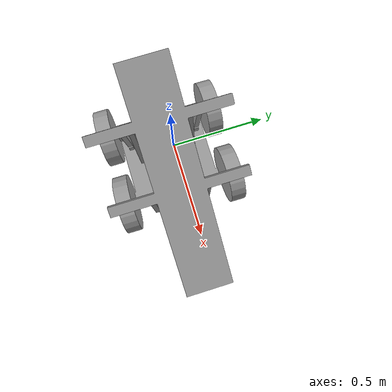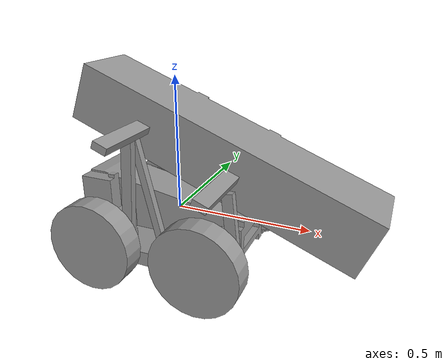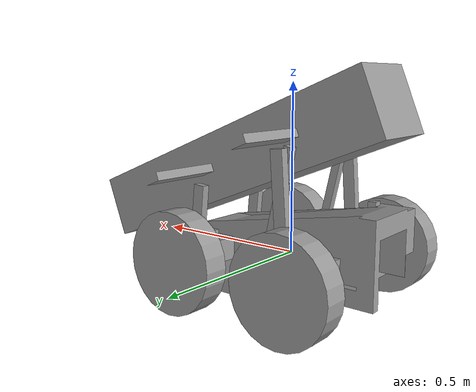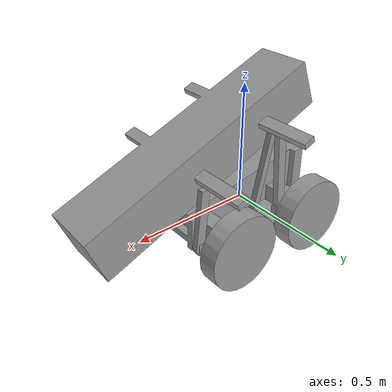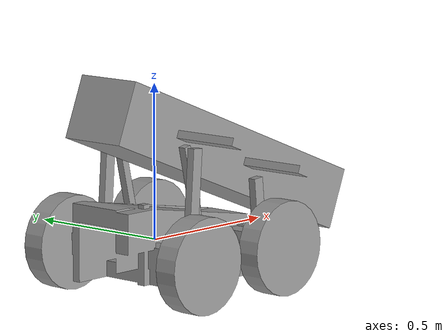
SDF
<?xml version='1.0'?>
<sdf version='1.6'>
  <model name='Digger'>
    <link name='base_link'>
      <pose frame=''>-0.180752 0.18451 -0.096283 0 -0 0</pose>
      <inertial>
        <mass>30</mass>
        <inertia>
          <ixx>0.166667</ixx>
          <ixy>0</ixy>
          <ixz>0</ixz>
          <iyy>0.166667</iyy>
          <iyz>0</iyz>
          <izz>0.166667</izz>
        </inertia>
        <pose frame=''>0 0 0 0 -0 0</pose>
      </inertial>
      <self_collide>0</self_collide>
      <kinematic>0</kinematic>
      <visual name='visual'>
        <pose frame=''>0 0 0 1.5708 0 -1.5708</pose>
        <geometry>
          <mesh>
            <uri>/home/ssr/ros_kinetic/rmc_dev_ws/src/2018_robot/simulations/gazebo_rmc_sim/models/Digger/Simple_Chassis.stl</uri>
            <scale>0.001 0.001 0.001</scale>
          </mesh>
        </geometry>
        <material>
          <lighting>1</lighting>
          <script>
            <uri>file://media/materials/scripts/gazebo.material</uri>
            <name>Gazebo/Grey</name>
          </script>
          <ambient>0.3 0.3 0.3 1</ambient>
          <diffuse>0.7 0.7 0.7 1</diffuse>
          <specular>0.01 0.01 0.01 1</specular>
          <emissive>0 0 0 1</emissive>
          <shader type='vertex'>
            <normal_map>__default__</normal_map>
          </shader>
        </material>
        <cast_shadows>1</cast_shadows>
        <transparency>0</transparency>
      </visual>
      <collision name='collision'>
        <laser_retro>0</laser_retro>
        <max_contacts>10</max_contacts>
        <pose frame=''>0 0 0 1.5708 0 -1.5708</pose>
        <geometry>
          <mesh>
            <uri>/home/ssr/ros_kinetic/rmc_dev_ws/src/2018_robot/simulations/gazebo_rmc_sim/models/Digger/Simple_Chassis.stl</uri>
            <scale>0.001 0.001 0.001</scale>
          </mesh>
        </geometry>
        <surface>
          <friction>
            <ode>
              <mu>1</mu>
              <mu2>1</mu2>
              <fdir1>0 0 0</fdir1>
              <slip1>0</slip1>
              <slip2>0</slip2>
            </ode>
            <torsional>
              <coefficient>1</coefficient>
              <patch_radius>0</patch_radius>
              <surface_radius>0</surface_radius>
              <use_patch_radius>1</use_patch_radius>
              <ode>
                <slip>0</slip>
              </ode>
            </torsional>
          </friction>
          <bounce>
            <restitution_coefficient>0</restitution_coefficient>
            <threshold>1e+06</threshold>
          </bounce>
          <contact>
            <collide_without_contact>0</collide_without_contact>
            <collide_without_contact_bitmask>1</collide_without_contact_bitmask>
            <collide_bitmask>1</collide_bitmask>
            <ode>
              <soft_cfm>0</soft_cfm>
              <soft_erp>0.2</soft_erp>
              <kp>1e+13</kp>
              <kd>1</kd>
              <max_vel>0.01</max_vel>
              <min_depth>0</min_depth>
            </ode>
            <bullet>
              <split_impulse>1</split_impulse>
              <split_impulse_penetration_threshold>-0.01</split_impulse_penetration_threshold>
              <soft_cfm>0</soft_cfm>
              <soft_erp>0.2</soft_erp>
              <kp>1e+13</kp>
              <kd>1</kd>
            </bullet>
          </contact>
        </surface>
      </collision>
    </link>
    <link name='arm'>
      <pose frame=''>-0.325179 0.069854 0.358325 1.19198 -0 -1.5708</pose>
      <inertial>
        <mass>1</mass>
        <inertia>
          <ixx>0.166667</ixx>
          <ixy>0</ixy>
          <ixz>0</ixz>
          <iyy>0.166667</iyy>
          <iyz>0</iyz>
          <izz>0.166667</izz>
        </inertia>
        <pose frame=''>0 0 0 0 -0 0</pose>
      </inertial>
      <self_collide>0</self_collide>
      <kinematic>0</kinematic>
      <visual name='visual'>
        <pose frame=''>0 0 0 0 -0 0</pose>
        <geometry>
          <mesh>
            <uri>/home/ssr/ros_kinetic/rmc_dev_ws/src/2018_robot/simulations/gazebo_rmc_sim/models/Digger/Simple_Arm.stl</uri>
            <scale>0.001 0.001 0.001</scale>
          </mesh>
        </geometry>
        <material>
          <lighting>1</lighting>
          <script>
            <uri>file://media/materials/scripts/gazebo.material</uri>
            <name>Gazebo/Grey</name>
          </script>
          <ambient>0.3 0.3 0.3 1</ambient>
          <diffuse>0.7 0.7 0.7 1</diffuse>
          <specular>0.01 0.01 0.01 1</specular>
          <emissive>0 0 0 1</emissive>
          <shader type='vertex'>
            <normal_map>__default__</normal_map>
          </shader>
        </material>
        <cast_shadows>1</cast_shadows>
        <transparency>0</transparency>
      </visual>
    </link>
    <link name='back_left_actuator_bottom'>
      <pose frame=''>-0.080752 0.146804 -0.01705 0 0.072198 0</pose>
      <inertial>
        <mass>1</mass>
        <inertia>
          <ixx>0.166667</ixx>
          <ixy>0</ixy>
          <ixz>0</ixz>
          <iyy>0.166667</iyy>
          <iyz>0</iyz>
          <izz>0.166667</izz>
        </inertia>
        <pose frame=''>0 0 0 0 -0 0</pose>
      </inertial>
      <self_collide>0</self_collide>
      <kinematic>0</kinematic>
      <visual name='visual'>
        <pose frame=''>0 0 0.17195 0 -0 0</pose>
        <geometry>
          <box>
            <size>0.0381 0.0254 0.3429</size>
          </box>
        </geometry>
        <material>
          <lighting>1</lighting>
          <script>
            <uri>file://media/materials/scripts/gazebo.material</uri>
            <name>Gazebo/Grey</name>
          </script>
          <ambient>0.3 0.3 0.3 1</ambient>
          <diffuse>0.7 0.7 0.7 1</diffuse>
          <specular>0.01 0.01 0.01 1</specular>
          <emissive>0 0 0 1</emissive>
          <shader type='vertex'>
            <normal_map>__default__</normal_map>
          </shader>
        </material>
        <cast_shadows>1</cast_shadows>
        <transparency>0</transparency>
      </visual>
      <collision name='collision'>
        <laser_retro>0</laser_retro>
        <max_contacts>10</max_contacts>
        <pose frame=''>0 0 0.17195 0 -0 0</pose>
        <geometry>
          <box>
            <size>0.0381 0.0254 0.3429</size>
          </box>
        </geometry>
        <surface>
          <friction>
            <ode>
              <mu>1</mu>
              <mu2>1</mu2>
              <fdir1>0 0 0</fdir1>
              <slip1>0</slip1>
              <slip2>0</slip2>
            </ode>
            <torsional>
              <coefficient>1</coefficient>
              <patch_radius>0</patch_radius>
              <surface_radius>0</surface_radius>
              <use_patch_radius>1</use_patch_radius>
              <ode>
                <slip>0</slip>
              </ode>
            </torsional>
          </friction>
          <bounce>
            <restitution_coefficient>0</restitution_coefficient>
            <threshold>1e+06</threshold>
          </bounce>
          <contact>
            <collide_without_contact>0</collide_without_contact>
            <collide_without_contact_bitmask>1</collide_without_contact_bitmask>
            <collide_bitmask>1</collide_bitmask>
            <ode>
              <soft_cfm>0</soft_cfm>
              <soft_erp>0.2</soft_erp>
              <kp>1e+13</kp>
              <kd>1</kd>
              <max_vel>0.01</max_vel>
              <min_depth>0</min_depth>
            </ode>
            <bullet>
              <split_impulse>1</split_impulse>
              <split_impulse_penetration_threshold>-0.01</split_impulse_penetration_threshold>
              <soft_cfm>0</soft_cfm>
              <soft_erp>0.2</soft_erp>
              <kp>1e+13</kp>
              <kd>1</kd>
            </bullet>
          </contact>
        </surface>
      </collision>
    </link>
    <link name='back_left_actuator_top'>
      <pose frame=''>-0.080752 0.146804 -0.01705 0 0.072198 0</pose>
      <inertial>
        <mass>1</mass>
        <inertia>
          <ixx>0.166667</ixx>
          <ixy>0</ixy>
          <ixz>0</ixz>
          <iyy>0.166667</iyy>
          <iyz>0</iyz>
          <izz>0.166667</izz>
        </inertia>
        <pose frame=''>0 0 0 0 -0 0</pose>
      </inertial>
      <self_collide>0</self_collide>
      <kinematic>0</kinematic>
      <visual name='visual'>
        <pose frame=''>0 0 0.17195 0 -0 0</pose>
        <geometry>
          <box>
            <size>0.0381 0.0254 0.3429</size>
          </box>
        </geometry>
        <material>
          <lighting>1</lighting>
          <script>
            <uri>file://media/materials/scripts/gazebo.material</uri>
            <name>Gazebo/Red</name>
          </script>
          <ambient>0.3 0.3 0.3 1</ambient>
          <diffuse>0.7 0.7 0.7 1</diffuse>
          <specular>0.01 0.01 0.01 1</specular>
          <emissive>0 0 0 1</emissive>
          <shader type='vertex'>
            <normal_map>__default__</normal_map>
          </shader>
        </material>
        <cast_shadows>1</cast_shadows>
        <transparency>0</transparency>
      </visual>
      <collision name='collision'>
        <laser_retro>0</laser_retro>
        <max_contacts>10</max_contacts>
        <pose frame=''>0 0 0.17195 0 -0 0</pose>
        <geometry>
          <box>
            <size>0.0381 0.0254 0.3429</size>
          </box>
        </geometry>
        <surface>
          <friction>
            <ode>
              <mu>1</mu>
              <mu2>1</mu2>
              <fdir1>0 0 0</fdir1>
              <slip1>0</slip1>
              <slip2>0</slip2>
            </ode>
            <torsional>
              <coefficient>1</coefficient>
              <patch_radius>0</patch_radius>
              <surface_radius>0</surface_radius>
              <use_patch_radius>1</use_patch_radius>
              <ode>
                <slip>0</slip>
              </ode>
            </torsional>
          </friction>
          <bounce>
            <restitution_coefficient>0</restitution_coefficient>
            <threshold>1e+06</threshold>
          </bounce>
          <contact>
            <collide_without_contact>0</collide_without_contact>
            <collide_without_contact_bitmask>1</collide_without_contact_bitmask>
            <collide_bitmask>1</collide_bitmask>
            <ode>
              <soft_cfm>0</soft_cfm>
              <soft_erp>0.2</soft_erp>
              <kp>1e+13</kp>
              <kd>1</kd>
              <max_vel>0.01</max_vel>
              <min_depth>0</min_depth>
            </ode>
            <bullet>
              <split_impulse>1</split_impulse>
              <split_impulse_penetration_threshold>-0.01</split_impulse_penetration_threshold>
              <soft_cfm>0</soft_cfm>
              <soft_erp>0.2</soft_erp>
              <kp>1e+13</kp>
              <kd>1</kd>
            </bullet>
          </contact>
        </surface>
      </collision>
    </link>
    <link name='back_right_actuator_bottom'>
      <pose frame=''>-0.080752 -0.225027 -0.01705 0 0.072198 0</pose>
      <inertial>
        <mass>1</mass>
        <inertia>
          <ixx>0.166667</ixx>
          <ixy>0</ixy>
          <ixz>0</ixz>
          <iyy>0.166667</iyy>
          <iyz>0</iyz>
          <izz>0.166667</izz>
        </inertia>
        <pose frame=''>0 0 0 0 -0 0</pose>
      </inertial>
      <self_collide>0</self_collide>
      <kinematic>0</kinematic>
      <visual name='visual'>
        <pose frame=''>0 0 0.17195 0 -0 0</pose>
        <geometry>
          <box>
            <size>0.0381 0.0254 0.3429</size>
          </box>
        </geometry>
        <material>
          <lighting>1</lighting>
          <script>
            <uri>file://media/materials/scripts/gazebo.material</uri>
            <name>Gazebo/Grey</name>
          </script>
          <ambient>0.3 0.3 0.3 1</ambient>
          <diffuse>0.7 0.7 0.7 1</diffuse>
          <specular>0.01 0.01 0.01 1</specular>
          <emissive>0 0 0 1</emissive>
          <shader type='vertex'>
            <normal_map>__default__</normal_map>
          </shader>
        </material>
        <cast_shadows>1</cast_shadows>
        <transparency>0</transparency>
      </visual>
      <collision name='collision'>
        <laser_retro>0</laser_retro>
        <max_contacts>10</max_contacts>
        <pose frame=''>0 0 0.17195 0 -0 0</pose>
        <geometry>
          <box>
            <size>0.0381 0.0254 0.3429</size>
          </box>
        </geometry>
        <surface>
          <friction>
            <ode>
              <mu>1</mu>
              <mu2>1</mu2>
              <fdir1>0 0 0</fdir1>
              <slip1>0</slip1>
              <slip2>0</slip2>
            </ode>
            <torsional>
              <coefficient>1</coefficient>
              <patch_radius>0</patch_radius>
              <surface_radius>0</surface_radius>
              <use_patch_radius>1</use_patch_radius>
              <ode>
                <slip>0</slip>
              </ode>
            </torsional>
          </friction>
          <bounce>
            <restitution_coefficient>0</restitution_coefficient>
            <threshold>1e+06</threshold>
          </bounce>
          <contact>
            <collide_without_contact>0</collide_without_contact>
            <collide_without_contact_bitmask>1</collide_without_contact_bitmask>
            <collide_bitmask>1</collide_bitmask>
            <ode>
              <soft_cfm>0</soft_cfm>
              <soft_erp>0.2</soft_erp>
              <kp>1e+13</kp>
              <kd>1</kd>
              <max_vel>0.01</max_vel>
              <min_depth>0</min_depth>
            </ode>
            <bullet>
              <split_impulse>1</split_impulse>
              <split_impulse_penetration_threshold>-0.01</split_impulse_penetration_threshold>
              <soft_cfm>0</soft_cfm>
              <soft_erp>0.2</soft_erp>
              <kp>1e+13</kp>
              <kd>1</kd>
            </bullet>
          </contact>
        </surface>
      </collision>
    </link>
    <link name='back_right_actuator_top'>
      <pose frame=''>-0.080752 -0.225027 -0.01705 0 0.072198 0</pose>
      <inertial>
        <mass>1</mass>
        <inertia>
          <ixx>0.166667</ixx>
          <ixy>0</ixy>
          <ixz>0</ixz>
          <iyy>0.166667</iyy>
          <iyz>0</iyz>
          <izz>0.166667</izz>
        </inertia>
        <pose frame=''>0 0 0 0 -0 0</pose>
      </inertial>
      <self_collide>0</self_collide>
      <kinematic>0</kinematic>
      <visual name='visual'>
        <pose frame=''>0 0 0.17195 0 -0 0</pose>
        <geometry>
          <box>
            <size>0.0381 0.0254 0.3429</size>
          </box>
        </geometry>
        <material>
          <lighting>1</lighting>
          <script>
            <uri>file://media/materials/scripts/gazebo.material</uri>
            <name>Gazebo/Red</name>
          </script>
          <ambient>0.3 0.3 0.3 1</ambient>
          <diffuse>0.7 0.7 0.7 1</diffuse>
          <specular>0.01 0.01 0.01 1</specular>
          <emissive>0 0 0 1</emissive>
          <shader type='vertex'>
            <normal_map>__default__</normal_map>
          </shader>
        </material>
        <cast_shadows>1</cast_shadows>
        <transparency>0</transparency>
      </visual>
      <collision name='collision'>
        <laser_retro>0</laser_retro>
        <max_contacts>10</max_contacts>
        <pose frame=''>0 0 0.17195 0 -0 0</pose>
        <geometry>
          <box>
            <size>0.0381 0.0254 0.3429</size>
          </box>
        </geometry>
        <surface>
          <friction>
            <ode>
              <mu>1</mu>
              <mu2>1</mu2>
              <fdir1>0 0 0</fdir1>
              <slip1>0</slip1>
              <slip2>0</slip2>
            </ode>
            <torsional>
              <coefficient>1</coefficient>
              <patch_radius>0</patch_radius>
              <surface_radius>0</surface_radius>
              <use_patch_radius>1</use_patch_radius>
              <ode>
                <slip>0</slip>
              </ode>
            </torsional>
          </friction>
          <bounce>
            <restitution_coefficient>0</restitution_coefficient>
            <threshold>1e+06</threshold>
          </bounce>
          <contact>
            <collide_without_contact>0</collide_without_contact>
            <collide_without_contact_bitmask>1</collide_without_contact_bitmask>
            <collide_bitmask>1</collide_bitmask>
            <ode>
              <soft_cfm>0</soft_cfm>
              <soft_erp>0.2</soft_erp>
              <kp>1e+13</kp>
              <kd>1</kd>
              <max_vel>0.01</max_vel>
              <min_depth>0</min_depth>
            </ode>
            <bullet>
              <split_impulse>1</split_impulse>
              <split_impulse_penetration_threshold>-0.01</split_impulse_penetration_threshold>
              <soft_cfm>0</soft_cfm>
              <soft_erp>0.2</soft_erp>
              <kp>1e+13</kp>
              <kd>1</kd>
            </bullet>
          </contact>
        </surface>
      </collision>
    </link>
    <link name='front_left_actuator_bottom'>
      <pose frame=''>0.299248 0.09451 -0.079616 0 -0.097496 0</pose>
      <inertial>
        <mass>1</mass>
        <inertia>
          <ixx>0.166667</ixx>
          <ixy>0</ixy>
          <ixz>0</ixz>
          <iyy>0.166667</iyy>
          <iyz>0</iyz>
          <izz>0.166667</izz>
        </inertia>
        <pose frame=''>0 0 0 0 -0 0</pose>
      </inertial>
      <self_collide>0</self_collide>
      <kinematic>0</kinematic>
      <visual name='visual'>
        <pose frame=''>0 0 0.133333 0 -0 0</pose>
        <geometry>
          <box>
            <size>0.0381 0.0254 0.266667</size>
          </box>
        </geometry>
        <material>
          <lighting>1</lighting>
          <script>
            <uri>file://media/materials/scripts/gazebo.material</uri>
            <name>Gazebo/Grey</name>
          </script>
          <ambient>0.3 0.3 0.3 1</ambient>
          <diffuse>0.7 0.7 0.7 1</diffuse>
          <specular>0.01 0.01 0.01 1</specular>
          <emissive>0 0 0 1</emissive>
          <shader type='vertex'>
            <normal_map>__default__</normal_map>
          </shader>
        </material>
        <cast_shadows>1</cast_shadows>
        <transparency>0</transparency>
      </visual>
      <collision name='collision'>
        <laser_retro>0</laser_retro>
        <max_contacts>10</max_contacts>
        <pose frame=''>0 0 0.133333 0 -0 0</pose>
        <geometry>
          <box>
            <size>0.0381 0.0254 0.266667</size>
          </box>
        </geometry>
        <surface>
          <friction>
            <ode>
              <mu>1</mu>
              <mu2>1</mu2>
              <fdir1>0 0 0</fdir1>
              <slip1>0</slip1>
              <slip2>0</slip2>
            </ode>
            <torsional>
              <coefficient>1</coefficient>
              <patch_radius>0</patch_radius>
              <surface_radius>0</surface_radius>
              <use_patch_radius>1</use_patch_radius>
              <ode>
                <slip>0</slip>
              </ode>
            </torsional>
          </friction>
          <bounce>
            <restitution_coefficient>0</restitution_coefficient>
            <threshold>1e+06</threshold>
          </bounce>
          <contact>
            <collide_without_contact>0</collide_without_contact>
            <collide_without_contact_bitmask>1</collide_without_contact_bitmask>
            <collide_bitmask>1</collide_bitmask>
            <ode>
              <soft_cfm>0</soft_cfm>
              <soft_erp>0.2</soft_erp>
              <kp>1e+13</kp>
              <kd>1</kd>
              <max_vel>0.01</max_vel>
              <min_depth>0</min_depth>
            </ode>
            <bullet>
              <split_impulse>1</split_impulse>
              <split_impulse_penetration_threshold>-0.01</split_impulse_penetration_threshold>
              <soft_cfm>0</soft_cfm>
              <soft_erp>0.2</soft_erp>
              <kp>1e+13</kp>
              <kd>1</kd>
            </bullet>
          </contact>
        </surface>
      </collision>
    </link>
    <link name='front_left_actuator_top'>
      <pose frame=''>0.299248 0.09451 -0.079616 0 -0.097496 0</pose>
      <inertial>
        <mass>1</mass>
        <inertia>
          <ixx>0.166667</ixx>
          <ixy>0</ixy>
          <ixz>0</ixz>
          <iyy>0.166667</iyy>
          <iyz>0</iyz>
          <izz>0.166667</izz>
        </inertia>
        <pose frame=''>0 0 0 0 -0 0</pose>
      </inertial>
      <self_collide>0</self_collide>
      <kinematic>0</kinematic>
      <visual name='visual'>
        <pose frame=''>0 0 0.133333 0 -0 0</pose>
        <geometry>
          <box>
            <size>0.0381 0.0254 0.266667</size>
          </box>
        </geometry>
        <material>
          <lighting>1</lighting>
          <script>
            <uri>file://media/materials/scripts/gazebo.material</uri>
            <name>Gazebo/Red</name>
          </script>
          <ambient>0.3 0.3 0.3 1</ambient>
          <diffuse>0.7 0.7 0.7 1</diffuse>
          <specular>0.01 0.01 0.01 1</specular>
          <emissive>0 0 0 1</emissive>
          <shader type='vertex'>
            <normal_map>__default__</normal_map>
          </shader>
        </material>
        <cast_shadows>1</cast_shadows>
        <transparency>0</transparency>
      </visual>
      <collision name='collision'>
        <laser_retro>0</laser_retro>
        <max_contacts>10</max_contacts>
        <pose frame=''>0 0 0.133333 0 -0 0</pose>
        <geometry>
          <box>
            <size>0.0381 0.0254 0.266667</size>
          </box>
        </geometry>
        <surface>
          <friction>
            <ode>
              <mu>1</mu>
              <mu2>1</mu2>
              <fdir1>0 0 0</fdir1>
              <slip1>0</slip1>
              <slip2>0</slip2>
            </ode>
            <torsional>
              <coefficient>1</coefficient>
              <patch_radius>0</patch_radius>
              <surface_radius>0</surface_radius>
              <use_patch_radius>1</use_patch_radius>
              <ode>
                <slip>0</slip>
              </ode>
            </torsional>
          </friction>
          <bounce>
            <restitution_coefficient>0</restitution_coefficient>
            <threshold>1e+06</threshold>
          </bounce>
          <contact>
            <collide_without_contact>0</collide_without_contact>
            <collide_without_contact_bitmask>1</collide_without_contact_bitmask>
            <collide_bitmask>1</collide_bitmask>
            <ode>
              <soft_cfm>0</soft_cfm>
              <soft_erp>0.2</soft_erp>
              <kp>1e+13</kp>
              <kd>1</kd>
              <max_vel>0.01</max_vel>
              <min_depth>0</min_depth>
            </ode>
            <bullet>
              <split_impulse>1</split_impulse>
              <split_impulse_penetration_threshold>-0.01</split_impulse_penetration_threshold>
              <soft_cfm>0</soft_cfm>
              <soft_erp>0.2</soft_erp>
              <kp>1e+13</kp>
              <kd>1</kd>
            </bullet>
          </contact>
        </surface>
      </collision>
    </link>
    <link name='front_right_actuator_bottom'>
      <pose frame=''>0.299248 -0.18549 -0.079616 0 -0.097496 0</pose>
      <inertial>
        <mass>1</mass>
        <inertia>
          <ixx>0.166667</ixx>
          <ixy>0</ixy>
          <ixz>0</ixz>
          <iyy>0.166667</iyy>
          <iyz>0</iyz>
          <izz>0.166667</izz>
        </inertia>
        <pose frame=''>0 0 0 0 -0 0</pose>
      </inertial>
      <self_collide>0</self_collide>
      <kinematic>0</kinematic>
      <visual name='visual'>
        <pose frame=''>0 0 0.133333 0 -0 0</pose>
        <geometry>
          <box>
            <size>0.0381 0.0254 0.266667</size>
          </box>
        </geometry>
        <material>
          <lighting>1</lighting>
          <script>
            <uri>file://media/materials/scripts/gazebo.material</uri>
            <name>Gazebo/Grey</name>
          </script>
          <ambient>0.3 0.3 0.3 1</ambient>
          <diffuse>0.7 0.7 0.7 1</diffuse>
          <specular>0.01 0.01 0.01 1</specular>
          <emissive>0 0 0 1</emissive>
          <shader type='vertex'>
            <normal_map>__default__</normal_map>
          </shader>
        </material>
        <cast_shadows>1</cast_shadows>
        <transparency>0</transparency>
      </visual>
      <collision name='collision'>
        <laser_retro>0</laser_retro>
        <max_contacts>10</max_contacts>
        <pose frame=''>0 0 0.133333 0 -0 0</pose>
        <geometry>
          <box>
            <size>0.0381 0.0254 0.266667</size>
          </box>
        </geometry>
        <surface>
          <friction>
            <ode>
              <mu>1</mu>
              <mu2>1</mu2>
              <fdir1>0 0 0</fdir1>
              <slip1>0</slip1>
              <slip2>0</slip2>
            </ode>
            <torsional>
              <coefficient>1</coefficient>
              <patch_radius>0</patch_radius>
              <surface_radius>0</surface_radius>
              <use_patch_radius>1</use_patch_radius>
              <ode>
                <slip>0</slip>
              </ode>
            </torsional>
          </friction>
          <bounce>
            <restitution_coefficient>0</restitution_coefficient>
            <threshold>1e+06</threshold>
          </bounce>
          <contact>
            <collide_without_contact>0</collide_without_contact>
            <collide_without_contact_bitmask>1</collide_without_contact_bitmask>
            <collide_bitmask>1</collide_bitmask>
            <ode>
              <soft_cfm>0</soft_cfm>
              <soft_erp>0.2</soft_erp>
              <kp>1e+13</kp>
              <kd>1</kd>
              <max_vel>0.01</max_vel>
              <min_depth>0</min_depth>
            </ode>
            <bullet>
              <split_impulse>1</split_impulse>
              <split_impulse_penetration_threshold>-0.01</split_impulse_penetration_threshold>
              <soft_cfm>0</soft_cfm>
              <soft_erp>0.2</soft_erp>
              <kp>1e+13</kp>
              <kd>1</kd>
            </bullet>
          </contact>
        </surface>
      </collision>
    </link>
    <link name='front_right_actuator_top'>
      <pose frame=''>0.299248 -0.18549 -0.079616 0 -0.097496 0</pose>
      <inertial>
        <mass>1</mass>
        <inertia>
          <ixx>0.166667</ixx>
          <ixy>0</ixy>
          <ixz>0</ixz>
          <iyy>0.166667</iyy>
          <iyz>0</iyz>
          <izz>0.166667</izz>
        </inertia>
        <pose frame=''>0 0 0 0 -0 0</pose>
      </inertial>
      <self_collide>0</self_collide>
      <kinematic>0</kinematic>
      <visual name='visual'>
        <pose frame=''>0 0 0.133333 0 -0 0</pose>
        <geometry>
          <box>
            <size>0.0381 0.0254 0.266667</size>
          </box>
        </geometry>
        <material>
          <lighting>1</lighting>
          <script>
            <uri>file://media/materials/scripts/gazebo.material</uri>
            <name>Gazebo/Red</name>
          </script>
          <ambient>0.3 0.3 0.3 1</ambient>
          <diffuse>0.7 0.7 0.7 1</diffuse>
          <specular>0.01 0.01 0.01 1</specular>
          <emissive>0 0 0 1</emissive>
          <shader type='vertex'>
            <normal_map>__default__</normal_map>
          </shader>
        </material>
        <cast_shadows>1</cast_shadows>
        <transparency>0</transparency>
      </visual>
      <collision name='collision'>
        <laser_retro>0</laser_retro>
        <max_contacts>10</max_contacts>
        <pose frame=''>0 0 0.133333 0 -0 0</pose>
        <geometry>
          <box>
            <size>0.0381 0.0254 0.266667</size>
          </box>
        </geometry>
        <surface>
          <friction>
            <ode>
              <mu>1</mu>
              <mu2>1</mu2>
              <fdir1>0 0 0</fdir1>
              <slip1>0</slip1>
              <slip2>0</slip2>
            </ode>
            <torsional>
              <coefficient>1</coefficient>
              <patch_radius>0</patch_radius>
              <surface_radius>0</surface_radius>
              <use_patch_radius>1</use_patch_radius>
              <ode>
                <slip>0</slip>
              </ode>
            </torsional>
          </friction>
          <bounce>
            <restitution_coefficient>0</restitution_coefficient>
            <threshold>1e+06</threshold>
          </bounce>
          <contact>
            <collide_without_contact>0</collide_without_contact>
            <collide_without_contact_bitmask>1</collide_without_contact_bitmask>
            <collide_bitmask>1</collide_bitmask>
            <ode>
              <soft_cfm>0</soft_cfm>
              <soft_erp>0.2</soft_erp>
              <kp>1e+13</kp>
              <kd>1</kd>
              <max_vel>0.01</max_vel>
              <min_depth>0</min_depth>
            </ode>
            <bullet>
              <split_impulse>1</split_impulse>
              <split_impulse_penetration_threshold>-0.01</split_impulse_penetration_threshold>
              <soft_cfm>0</soft_cfm>
              <soft_erp>0.2</soft_erp>
              <kp>1e+13</kp>
              <kd>1</kd>
            </bullet>
          </contact>
        </surface>
      </collision>
    </link>
    <link name='left_support'>
      <pose frame=''>0.024618 0.099558 -0.043898 0 -0.224957 0</pose>
      <inertial>
        <mass>1</mass>
        <inertia>
          <ixx>0.166667</ixx>
          <ixy>0</ixy>
          <ixz>0</ixz>
          <iyy>0.166667</iyy>
          <iyz>0</iyz>
          <izz>0.166667</izz>
        </inertia>
        <pose frame=''>0 0 0 0 -0 0</pose>
      </inertial>
      <self_collide>0</self_collide>
      <kinematic>0</kinematic>
      <visual name='visual'>
        <pose frame=''>0 0 0.1905 0 -0 0</pose>
        <geometry>
          <box>
            <size>0.0254 0.0254 0.381</size>
          </box>
        </geometry>
        <material>
          <lighting>1</lighting>
          <script>
            <uri>file://media/materials/scripts/gazebo.material</uri>
            <name>Gazebo/Grey</name>
          </script>
          <ambient>0.3 0.3 0.3 1</ambient>
          <diffuse>0.7 0.7 0.7 1</diffuse>
          <specular>0.01 0.01 0.01 1</specular>
          <emissive>0 0 0 1</emissive>
          <shader type='vertex'>
            <normal_map>__default__</normal_map>
          </shader>
        </material>
        <cast_shadows>1</cast_shadows>
        <transparency>0</transparency>
      </visual>
      <collision name='collision'>
        <laser_retro>0</laser_retro>
        <max_contacts>10</max_contacts>
        <pose frame=''>0 0 0.1905 0 -0 0</pose>
        <geometry>
          <box>
            <size>0.0254 0.0254 0.381</size>
          </box>
        </geometry>
        <surface>
          <friction>
            <ode>
              <mu>1</mu>
              <mu2>1</mu2>
              <fdir1>0 0 0</fdir1>
              <slip1>0</slip1>
              <slip2>0</slip2>
            </ode>
            <torsional>
              <coefficient>1</coefficient>
              <patch_radius>0</patch_radius>
              <surface_radius>0</surface_radius>
              <use_patch_radius>1</use_patch_radius>
              <ode>
                <slip>0</slip>
              </ode>
            </torsional>
          </friction>
          <bounce>
            <restitution_coefficient>0</restitution_coefficient>
            <threshold>1e+06</threshold>
          </bounce>
          <contact>
            <collide_without_contact>0</collide_without_contact>
            <collide_without_contact_bitmask>1</collide_without_contact_bitmask>
            <collide_bitmask>1</collide_bitmask>
            <ode>
              <soft_cfm>0</soft_cfm>
              <soft_erp>0.2</soft_erp>
              <kp>1e+13</kp>
              <kd>1</kd>
              <max_vel>0.01</max_vel>
              <min_depth>0</min_depth>
            </ode>
            <bullet>
              <split_impulse>1</split_impulse>
              <split_impulse_penetration_threshold>-0.01</split_impulse_penetration_threshold>
              <soft_cfm>0</soft_cfm>
              <soft_erp>0.2</soft_erp>
              <kp>1e+13</kp>
              <kd>1</kd>
            </bullet>
          </contact>
        </surface>
      </collision>
    </link>
    <link name='back_right_wheel'>
      <pose frame=''>-0.147977 -0.325036 -0.014715 1.5708 -0 0</pose>
      <inertial>
        <mass>1</mass>
        <inertia>
          <ixx>0.145833</ixx>
          <ixy>0</ixy>
          <ixz>0</ixz>
          <iyy>0.145833</iyy>
          <iyz>0</iyz>
          <izz>0.125</izz>
        </inertia>
        <pose frame=''>0 0 0 0 -0 0</pose>
      </inertial>
      <gravity>1</gravity>
      <self_collide>0</self_collide>
      <kinematic>0</kinematic>
      <visual name='visual'>
        <pose frame=''>0 0 0 0 -0 0</pose>
        <geometry>
          <cylinder>
            <radius>0.1524</radius>
            <length>0.0762</length>
          </cylinder>
        </geometry>
        <material>
          <lighting>1</lighting>
          <script>
            <uri>file://media/materials/scripts/gazebo.material</uri>
            <name>Gazebo/Grey</name>
          </script>
          <ambient>0.3 0.3 0.3 1</ambient>
          <diffuse>0.7 0.7 0.7 1</diffuse>
          <specular>0.01 0.01 0.01 1</specular>
          <emissive>0 0 0 1</emissive>
          <shader type='vertex'>
            <normal_map>__default__</normal_map>
          </shader>
        </material>
        <cast_shadows>1</cast_shadows>
        <transparency>0</transparency>
      </visual>
      <collision name='collision'>
        <laser_retro>0</laser_retro>
        <max_contacts>10</max_contacts>
        <pose frame=''>0 0 0 0 -0 0</pose>
        <geometry>
          <cylinder>
            <radius>0.1524</radius>
            <length>0.0762</length>
          </cylinder>
        </geometry>
        <surface>
          <friction>
            <ode>
              <mu>1</mu>
              <mu2>1</mu2>
              <fdir1>0 0 0</fdir1>
              <slip1>0</slip1>
              <slip2>0</slip2>
            </ode>
            <torsional>
              <coefficient>1</coefficient>
              <patch_radius>0</patch_radius>
              <surface_radius>0</surface_radius>
              <use_patch_radius>1</use_patch_radius>
              <ode>
                <slip>0</slip>
              </ode>
            </torsional>
          </friction>
          <bounce>
            <restitution_coefficient>0</restitution_coefficient>
            <threshold>1e+06</threshold>
          </bounce>
          <contact>
            <collide_without_contact>0</collide_without_contact>
            <collide_without_contact_bitmask>1</collide_without_contact_bitmask>
            <collide_bitmask>1</collide_bitmask>
            <ode>
              <soft_cfm>0</soft_cfm>
              <soft_erp>0.2</soft_erp>
              <kp>1e+13</kp>
              <kd>1</kd>
              <max_vel>0.01</max_vel>
              <min_depth>0</min_depth>
            </ode>
            <bullet>
              <split_impulse>1</split_impulse>
              <split_impulse_penetration_threshold>-0.01</split_impulse_penetration_threshold>
              <soft_cfm>0</soft_cfm>
              <soft_erp>0.2</soft_erp>
              <kp>1e+13</kp>
              <kd>1</kd>
            </bullet>
          </contact>
        </surface>
      </collision>
    </link>
    <link name='front_right_wheel'>
      <pose frame=''>0.230905 -0.325036 -0.014715 1.5708 7e-06 -0.007032</pose>
      <inertial>
        <mass>1</mass>
        <inertia>
          <ixx>0.145833</ixx>
          <ixy>0</ixy>
          <ixz>0</ixz>
          <iyy>0.145833</iyy>
          <iyz>0</iyz>
          <izz>0.125</izz>
        </inertia>
        <pose frame=''>0 0 0 0 -0 0</pose>
      </inertial>
      <self_collide>0</self_collide>
      <kinematic>0</kinematic>
      <gravity>1</gravity>
      <visual name='visual'>
        <pose frame=''>0 0 0 0 -0 0</pose>
        <geometry>
          <cylinder>
            <radius>0.1524</radius>
            <length>0.0762</length>
          </cylinder>
        </geometry>
        <material>
          <lighting>1</lighting>
          <script>
            <uri>file://media/materials/scripts/gazebo.material</uri>
            <name>Gazebo/Grey</name>
          </script>
          <ambient>0.3 0.3 0.3 1</ambient>
          <diffuse>0.7 0.7 0.7 1</diffuse>
          <specular>0.01 0.01 0.01 1</specular>
          <emissive>0 0 0 1</emissive>
          <shader type='vertex'>
            <normal_map>__default__</normal_map>
          </shader>
        </material>
        <cast_shadows>1</cast_shadows>
        <transparency>0</transparency>
      </visual>
      <collision name='collision'>
        <laser_retro>0</laser_retro>
        <max_contacts>10</max_contacts>
        <pose frame=''>0 0 0 0 -0 0</pose>
        <geometry>
          <cylinder>
            <radius>0.1524</radius>
            <length>0.0762</length>
          </cylinder>
        </geometry>
        <surface>
          <friction>
            <ode>
              <mu>1</mu>
              <mu2>1</mu2>
              <fdir1>0 0 0</fdir1>
              <slip1>0</slip1>
              <slip2>0</slip2>
            </ode>
            <torsional>
              <coefficient>1</coefficient>
              <patch_radius>0</patch_radius>
              <surface_radius>0</surface_radius>
              <use_patch_radius>1</use_patch_radius>
              <ode>
                <slip>0</slip>
              </ode>
            </torsional>
          </friction>
          <bounce>
            <restitution_coefficient>0</restitution_coefficient>
            <threshold>1e+06</threshold>
          </bounce>
          <contact>
            <collide_without_contact>0</collide_without_contact>
            <collide_without_contact_bitmask>1</collide_without_contact_bitmask>
            <collide_bitmask>1</collide_bitmask>
            <ode>
              <soft_cfm>0</soft_cfm>
              <soft_erp>0.2</soft_erp>
              <kp>1e+13</kp>
              <kd>1</kd>
              <max_vel>0.01</max_vel>
              <min_depth>0</min_depth>
            </ode>
            <bullet>
              <split_impulse>1</split_impulse>
              <split_impulse_penetration_threshold>-0.01</split_impulse_penetration_threshold>
              <soft_cfm>0</soft_cfm>
              <soft_erp>0.2</soft_erp>
              <kp>1e+13</kp>
              <kd>1</kd>
            </bullet>
          </contact>
        </surface>
      </collision>
    </link>
    <link name='back_left_wheel'>
      <pose frame=''>-0.147977 0.243888 -0.014715 1.5708 7e-06 -0.007032</pose>
      <inertial>
        <mass>1</mass>
        <inertia>
          <ixx>0.145833</ixx>
          <ixy>0</ixy>
          <ixz>0</ixz>
          <iyy>0.145833</iyy>
          <iyz>0</iyz>
          <izz>0.125</izz>
        </inertia>
        <pose frame=''>0 0 0 0 -0 0</pose>
      </inertial>
      <self_collide>0</self_collide>
      <kinematic>0</kinematic>
      <gravity>1</gravity>
      <visual name='visual'>
        <pose frame=''>0 0 0 0 -0 0</pose>
        <geometry>
          <cylinder>
            <radius>0.1524</radius>
            <length>0.0762</length>
          </cylinder>
        </geometry>
        <material>
          <lighting>1</lighting>
          <script>
            <uri>file://media/materials/scripts/gazebo.material</uri>
            <name>Gazebo/Grey</name>
          </script>
          <ambient>0.3 0.3 0.3 1</ambient>
          <diffuse>0.7 0.7 0.7 1</diffuse>
          <specular>0.01 0.01 0.01 1</specular>
          <emissive>0 0 0 1</emissive>
          <shader type='vertex'>
            <normal_map>__default__</normal_map>
          </shader>
        </material>
        <cast_shadows>1</cast_shadows>
        <transparency>0</transparency>
      </visual>
      <collision name='collision'>
        <laser_retro>0</laser_retro>
        <max_contacts>10</max_contacts>
        <pose frame=''>0 0 0 0 -0 0</pose>
        <geometry>
          <cylinder>
            <radius>0.1524</radius>
            <length>0.0762</length>
          </cylinder>
        </geometry>
        <surface>
          <friction>
            <ode>
              <mu>1</mu>
              <mu2>1</mu2>
              <fdir1>0 0 0</fdir1>
              <slip1>0</slip1>
              <slip2>0</slip2>
            </ode>
            <torsional>
              <coefficient>1</coefficient>
              <patch_radius>0</patch_radius>
              <surface_radius>0</surface_radius>
              <use_patch_radius>1</use_patch_radius>
              <ode>
                <slip>0</slip>
              </ode>
            </torsional>
          </friction>
          <bounce>
            <restitution_coefficient>0</restitution_coefficient>
            <threshold>1e+06</threshold>
          </bounce>
          <contact>
            <collide_without_contact>0</collide_without_contact>
            <collide_without_contact_bitmask>1</collide_without_contact_bitmask>
            <collide_bitmask>1</collide_bitmask>
            <ode>
              <soft_cfm>0</soft_cfm>
              <soft_erp>0.2</soft_erp>
              <kp>1e+13</kp>
              <kd>1</kd>
              <max_vel>0.01</max_vel>
              <min_depth>0</min_depth>
            </ode>
            <bullet>
              <split_impulse>1</split_impulse>
              <split_impulse_penetration_threshold>-0.01</split_impulse_penetration_threshold>
              <soft_cfm>0</soft_cfm>
              <soft_erp>0.2</soft_erp>
              <kp>1e+13</kp>
              <kd>1</kd>
            </bullet>
          </contact>
        </surface>
      </collision>
    </link>
    <link name='front_left_wheel'>
      <pose frame=''>0.230905 0.243888 -0.014715 1.5708 7e-06 -0.007032</pose>
      <inertial>
        <mass>1</mass>
        <inertia>
          <ixx>0.145833</ixx>
          <ixy>0</ixy>
          <ixz>0</ixz>
          <iyy>0.145833</iyy>
          <iyz>0</iyz>
          <izz>0.125</izz>
        </inertia>
        <pose frame=''>0 0 0 0 -0 0</pose>
      </inertial>
      <self_collide>0</self_collide>
      <kinematic>0</kinematic>
      <gravity>1</gravity>
      <visual name='visual'>
        <pose frame=''>0 0 0 0 -0 0</pose>
        <geometry>
          <cylinder>
            <radius>0.1524</radius>
            <length>0.0762</length>
          </cylinder>
        </geometry>
        <material>
          <lighting>1</lighting>
          <script>
            <uri>file://media/materials/scripts/gazebo.material</uri>
            <name>Gazebo/Grey</name>
          </script>
          <ambient>0.3 0.3 0.3 1</ambient>
          <diffuse>0.7 0.7 0.7 1</diffuse>
          <specular>0.01 0.01 0.01 1</specular>
          <emissive>0 0 0 1</emissive>
          <shader type='vertex'>
            <normal_map>__default__</normal_map>
          </shader>
        </material>
        <cast_shadows>1</cast_shadows>
        <transparency>0</transparency>
      </visual>
      <collision name='collision'>
        <laser_retro>0</laser_retro>
        <max_contacts>10</max_contacts>
        <pose frame=''>0 0 0 0 -0 0</pose>
        <geometry>
          <cylinder>
            <radius>0.1524</radius>
            <length>0.0762</length>
          </cylinder>
        </geometry>
        <surface>
          <friction>
            <ode>
              <mu>1</mu>
              <mu2>1</mu2>
              <fdir1>0 0 0</fdir1>
              <slip1>0</slip1>
              <slip2>0</slip2>
            </ode>
            <torsional>
              <coefficient>1</coefficient>
              <patch_radius>0</patch_radius>
              <surface_radius>0</surface_radius>
              <use_patch_radius>1</use_patch_radius>
              <ode>
                <slip>0</slip>
              </ode>
            </torsional>
          </friction>
          <bounce>
            <restitution_coefficient>0</restitution_coefficient>
            <threshold>1e+06</threshold>
          </bounce>
          <contact>
            <collide_without_contact>0</collide_without_contact>
            <collide_without_contact_bitmask>1</collide_without_contact_bitmask>
            <collide_bitmask>1</collide_bitmask>
            <ode>
              <soft_cfm>0</soft_cfm>
              <soft_erp>0.2</soft_erp>
              <kp>1e+13</kp>
              <kd>1</kd>
              <max_vel>0.01</max_vel>
              <min_depth>0</min_depth>
            </ode>
            <bullet>
              <split_impulse>1</split_impulse>
              <split_impulse_penetration_threshold>-0.01</split_impulse_penetration_threshold>
              <soft_cfm>0</soft_cfm>
              <soft_erp>0.2</soft_erp>
              <kp>1e+13</kp>
              <kd>1</kd>
            </bullet>
          </contact>
        </surface>
      </collision>
    </link>
    <link name='right_support'>
      <pose frame=''>0.024618 -0.184722 -0.043898 0 -0.224957 0</pose>
      <inertial>
        <mass>1</mass>
        <inertia>
          <ixx>0.166667</ixx>
          <ixy>0</ixy>
          <ixz>0</ixz>
          <iyy>0.166667</iyy>
          <iyz>0</iyz>
          <izz>0.166667</izz>
        </inertia>
        <pose frame=''>0 0 0 0 -0 0</pose>
      </inertial>
      <self_collide>0</self_collide>
      <kinematic>0</kinematic>
      <visual name='visual'>
        <pose frame=''>0 0 0.1905 0 -0 0</pose>
        <geometry>
          <box>
            <size>0.0254 0.0254 0.381</size>
          </box>
        </geometry>
        <material>
          <lighting>1</lighting>
          <script>
            <uri>file://media/materials/scripts/gazebo.material</uri>
            <name>Gazebo/Grey</name>
          </script>
          <ambient>0.3 0.3 0.3 1</ambient>
          <diffuse>0.7 0.7 0.7 1</diffuse>
          <specular>0.01 0.01 0.01 1</specular>
          <emissive>0 0 0 1</emissive>
          <shader type='vertex'>
            <normal_map>__default__</normal_map>
          </shader>
        </material>
        <cast_shadows>1</cast_shadows>
        <transparency>0</transparency>
      </visual>
      <collision name='collision'>
        <laser_retro>0</laser_retro>
        <max_contacts>10</max_contacts>
        <pose frame=''>0 0 0.1905 0 -0 0</pose>
        <geometry>
          <box>
            <size>0.0254 0.0254 0.381</size>
          </box>
        </geometry>
        <surface>
          <friction>
            <ode>
              <mu>1</mu>
              <mu2>1</mu2>
              <fdir1>0 0 0</fdir1>
              <slip1>0</slip1>
              <slip2>0</slip2>
            </ode>
            <torsional>
              <coefficient>1</coefficient>
              <patch_radius>0</patch_radius>
              <surface_radius>0</surface_radius>
              <use_patch_radius>1</use_patch_radius>
              <ode>
                <slip>0</slip>
              </ode>
            </torsional>
          </friction>
          <bounce>
            <restitution_coefficient>0</restitution_coefficient>
            <threshold>1e+06</threshold>
          </bounce>
          <contact>
            <collide_without_contact>0</collide_without_contact>
            <collide_without_contact_bitmask>1</collide_without_contact_bitmask>
            <collide_bitmask>1</collide_bitmask>
            <ode>
              <soft_cfm>0</soft_cfm>
              <soft_erp>0.2</soft_erp>
              <kp>1e+13</kp>
              <kd>1</kd>
              <max_vel>0.01</max_vel>
              <min_depth>0</min_depth>
            </ode>
            <bullet>
              <split_impulse>1</split_impulse>
              <split_impulse_penetration_threshold>-0.01</split_impulse_penetration_threshold>
              <soft_cfm>0</soft_cfm>
              <soft_erp>0.2</soft_erp>
              <kp>1e+13</kp>
              <kd>1</kd>
            </bullet>
          </contact>
        </surface>
      </collision>
    </link>

    <joint name='actuator_back_left' type='prismatic'>
      <parent>back_left_actuator_top</parent>
      <child>back_left_actuator_bottom</child>
      <pose frame=''>0 0 0.16 0 -0 0</pose>
      <axis>
        <xyz>0 0 -1</xyz>
        <use_parent_model_frame>0</use_parent_model_frame>
        <limit>
          <lower>0</lower>
          <upper>0.2286</upper>
          <effort>-1</effort>
          <velocity>.1</velocity>
        </limit>
        <dynamics>
          <spring_reference>0</spring_reference>
          <spring_stiffness>0</spring_stiffness>
          <damping>10</damping>
          <friction>10</friction>
        </dynamics>
      </axis>
      <physics>
        <ode>
          <limit>
            <cfm>0</cfm>
            <erp>0.2</erp>
          </limit>
          <suspension>
            <cfm>0</cfm>
            <erp>0.2</erp>
          </suspension>
        </ode>
      </physics>
    </joint>
    <joint name='actuator_back_right' type='prismatic'>
      <parent>back_right_actuator_top</parent>
      <child>back_right_actuator_bottom</child>
      <pose frame=''>0 0 0.15 0 -0 0</pose>
      <axis>
        <xyz>0 0 -1</xyz>
        <use_parent_model_frame>0</use_parent_model_frame>
        <limit>
          <lower>0</lower>
          <upper>0.2286</upper>
          <effort>-1</effort>
          <velocity>.1</velocity>
        </limit>
        <dynamics>
          <spring_reference>0</spring_reference>
          <spring_stiffness>0</spring_stiffness>
          <damping>10</damping>
          <friction>10</friction>
        </dynamics>
      </axis>
      <physics>
        <ode>
          <limit>
            <cfm>0</cfm>
            <erp>0.2</erp>
          </limit>
          <suspension>
            <cfm>0</cfm>
            <erp>0.2</erp>
          </suspension>
        </ode>
      </physics>
    </joint>
    <joint name='actuator_front_left' type='prismatic'>
      <parent>front_left_actuator_top</parent>
      <child>front_left_actuator_bottom</child>
      <pose frame=''>0 0 0.1 0 -0 0</pose>
      <axis>
        <xyz>0 0 -1</xyz>
        <use_parent_model_frame>0</use_parent_model_frame>
        <limit>
          <lower>0</lower>
          <upper>0.1524</upper>
          <effort>-1</effort>
          <velocity>.1</velocity>
        </limit>
        <dynamics>
          <spring_reference>0</spring_reference>
          <spring_stiffness>0</spring_stiffness>
          <damping>10</damping>
          <friction>10</friction>
        </dynamics>
      </axis>
      <physics>
        <ode>
          <limit>
            <cfm>0</cfm>
            <erp>0.2</erp>
          </limit>
          <suspension>
            <cfm>0</cfm>
            <erp>0.2</erp>
          </suspension>
        </ode>
      </physics>
    </joint>
    <joint name='actuator_front_right' type='prismatic'>
      <parent>front_right_actuator_top</parent>
      <child>front_right_actuator_bottom</child>
      <pose frame=''>0 0 0.14 0 -0 0</pose>
      <axis>
        <xyz>0 0 -1</xyz>
        <use_parent_model_frame>0</use_parent_model_frame>
        <limit>
          <lower>0</lower>
          <upper>0.1524</upper>
          <effort>-1</effort>
          <velocity>.1</velocity>
        </limit>
        <dynamics>
          <spring_reference>0</spring_reference>
          <spring_stiffness>0</spring_stiffness>
          <damping>10</damping>
          <friction>10</friction>
        </dynamics>
      </axis>
      <physics>
        <ode>
          <limit>
            <cfm>0</cfm>
            <erp>0.2</erp>
          </limit>
          <suspension>
            <cfm>0</cfm>
            <erp>0.2</erp>
          </suspension>
        </ode>
      </physics>
    </joint>
    <joint name='back_left_wheel' type='revolute'>
      <parent>base_link</parent>
      <child>back_left_wheel</child>
      <pose frame=''>0 0 0 0 -0 0</pose>
      <axis>
        <xyz>0 0 1</xyz>
        <use_parent_model_frame>0</use_parent_model_frame>
        <limit>
          <lower>-1.79769e+308</lower>
          <upper>1.79769e+308</upper>
          <effort>-1</effort>
          <velocity>-1</velocity>
        </limit>
        <dynamics>
          <spring_reference>0</spring_reference>
          <spring_stiffness>0</spring_stiffness>
          <damping>10</damping>
        </dynamics>
      </axis>
      <physics>
        <ode>
          <limit>
            <cfm>0</cfm>
            <erp>0.2</erp>
          </limit>
          <suspension>
            <cfm>0</cfm>
            <erp>0.2</erp>
          </suspension>
        </ode>
      </physics>
    </joint>
    <joint name='front_left_wheel' type='revolute'>
      <parent>base_link</parent>
      <child>front_left_wheel</child>
      <pose frame=''>0 0 0 0 -0 0</pose>
      <axis>
        <xyz>0 0 1</xyz>
        <use_parent_model_frame>0</use_parent_model_frame>
        <limit>
          <lower>-1.79769e+308</lower>
          <upper>1.79769e+308</upper>
          <effort>-1</effort>
          <velocity>-1</velocity>
        </limit>
        <dynamics>
          <spring_reference>0</spring_reference>
          <spring_stiffness>0</spring_stiffness>
          <damping>10</damping>
        </dynamics>
      </axis>
      <physics>
        <ode>
          <limit>
            <cfm>0</cfm>
            <erp>0.2</erp>
          </limit>
          <suspension>
            <cfm>0</cfm>
            <erp>0.2</erp>
          </suspension>
        </ode>
      </physics>
    </joint>
    <joint name='back_right_wheel' type='revolute'>
      <parent>base_link</parent>
      <child>back_right_wheel</child>
      <pose frame=''>0 0 0 0 -0 0</pose>
      <axis>
        <xyz>0 0 1</xyz>
        <use_parent_model_frame>0</use_parent_model_frame>
        <limit>
          <lower>-1.79769e+308</lower>
          <upper>1.79769e+308</upper>
          <effort>-1</effort>
          <velocity>-1</velocity>
        </limit>
        <dynamics>
          <spring_reference>0</spring_reference>
          <spring_stiffness>0</spring_stiffness>
          <damping>10</damping>
        </dynamics>
      </axis>
      <physics>
        <ode>
          <limit>
            <cfm>0</cfm>
            <erp>0.2</erp>
          </limit>
          <suspension>
            <cfm>0</cfm>
            <erp>0.2</erp>
          </suspension>
        </ode>
      </physics>
    </joint>
    <joint name='front_right_wheel' type='revolute'>
      <parent>base_link</parent>
      <child>front_right_wheel</child>
      <pose frame=''>0 0 0 0 -0 0</pose>
      <axis>
        <xyz>0 0 1</xyz>
        <use_parent_model_frame>0</use_parent_model_frame>
        <limit>
          <lower>-1.79769e+308</lower>
          <upper>1.79769e+308</upper>
          <effort>-1</effort>
          <velocity>-1</velocity>
        </limit>
        <dynamics>
          <spring_reference>0</spring_reference>
          <spring_stiffness>0</spring_stiffness>
          <damping>10</damping>
        </dynamics>
      </axis>
      <physics>
        <ode>
          <limit>
            <cfm>0</cfm>
            <erp>0.2</erp>
          </limit>
          <suspension>
            <cfm>0</cfm>
            <erp>0.2</erp>
          </suspension>
        </ode>
      </physics>
    </joint>

    <joint name='back_left_actuator_bottom_base_joint' type='revolute'>
      <parent>base_link</parent>
      <child>back_left_actuator_bottom</child>
      <pose frame=''>0 0 0 0 -0 0</pose>
      <axis>
        <xyz>0 1 0</xyz>
        <use_parent_model_frame>0</use_parent_model_frame>
        <limit>
          <lower>-1.79769e+308</lower>
          <upper>1.79769e+308</upper>
          <effort>-1</effort>
          <velocity>-1</velocity>
        </limit>
        <dynamics>
          <spring_reference>0</spring_reference>
          <spring_stiffness>0</spring_stiffness>
          <damping>0</damping>
          <friction>0</friction>
        </dynamics>
      </axis>
      <physics>
        <ode>
          <limit>
            <cfm>0</cfm>
            <erp>0.2</erp>
          </limit>
          <suspension>
            <cfm>0</cfm>
            <erp>0.2</erp>
          </suspension>
        </ode>
      </physics>
    </joint>
    <joint name='back_left_actuator_top_arm_joint' type='revolute'>
      <parent>arm</parent>
      <child>back_left_actuator_top</child>
      <pose frame=''>0 0 0.3429 0 -0 0</pose>
      <axis>
        <xyz>0 1 0</xyz>
        <use_parent_model_frame>0</use_parent_model_frame>
        <limit>
          <lower>-1.79769e+308</lower>
          <upper>1.79769e+308</upper>
          <effort>-1</effort>
          <velocity>-1</velocity>
        </limit>
        <dynamics>
          <spring_reference>0</spring_reference>
          <spring_stiffness>0</spring_stiffness>
          <damping>0</damping>
          <friction>0</friction>
        </dynamics>
      </axis>
      <physics>
        <ode>
          <limit>
            <cfm>0</cfm>
            <erp>0.2</erp>
          </limit>
          <suspension>
            <cfm>0</cfm>
            <erp>0.2</erp>
          </suspension>
        </ode>
      </physics>
    </joint>
    <joint name='back_right_actuator_bottom_base_joint' type='revolute'>
      <parent>base_link</parent>
      <child>back_right_actuator_bottom</child>
      <pose frame=''>0 0 0 0 -0 0</pose>
      <axis>
        <xyz>0 1 0</xyz>
        <use_parent_model_frame>0</use_parent_model_frame>
        <limit>
          <lower>-1.79769e+308</lower>
          <upper>1.79769e+308</upper>
          <effort>-1</effort>
          <velocity>-1</velocity>
        </limit>
        <dynamics>
          <spring_reference>0</spring_reference>
          <spring_stiffness>0</spring_stiffness>
          <damping>0</damping>
          <friction>0</friction>
        </dynamics>
      </axis>
      <physics>
        <ode>
          <limit>
            <cfm>0</cfm>
            <erp>0.2</erp>
          </limit>
          <suspension>
            <cfm>0</cfm>
            <erp>0.2</erp>
          </suspension>
        </ode>
      </physics>
    </joint>
    <joint name='back_right_actuator_top_arm_joint' type='revolute'>
      <parent>arm</parent>
      <child>back_right_actuator_top</child>
      <pose frame=''>0 0 0.3429 0 -0 0</pose>
      <axis>
        <xyz>0 1 0</xyz>
        <use_parent_model_frame>0</use_parent_model_frame>
        <limit>
          <lower>-1.79769e+308</lower>
          <upper>1.79769e+308</upper>
          <effort>-1</effort>
          <velocity>-1</velocity>
        </limit>
        <dynamics>
          <spring_reference>0</spring_reference>
          <spring_stiffness>0</spring_stiffness>
          <damping>0</damping>
          <friction>0</friction>
        </dynamics>
      </axis>
      <physics>
        <ode>
          <limit>
            <cfm>0</cfm>
            <erp>0.2</erp>
          </limit>
          <suspension>
            <cfm>0</cfm>
            <erp>0.2</erp>
          </suspension>
        </ode>
      </physics>
    </joint>
    <joint name='front_left_actuator_bottom_base_joint' type='revolute'>
      <parent>base_link</parent>
      <child>front_left_actuator_bottom</child>
      <pose frame=''>0 0 0 0 -0 0</pose>
      <axis>
        <xyz>0 1 0</xyz>
        <use_parent_model_frame>0</use_parent_model_frame>
        <limit>
          <lower>-1.79769e+308</lower>
          <upper>1.79769e+308</upper>
          <effort>-1</effort>
          <velocity>-1</velocity>
        </limit>
        <dynamics>
          <spring_reference>0</spring_reference>
          <spring_stiffness>0</spring_stiffness>
          <damping>0</damping>
          <friction>0</friction>
        </dynamics>
      </axis>
      <physics>
        <ode>
          <limit>
            <cfm>0</cfm>
            <erp>0.2</erp>
          </limit>
          <suspension>
            <cfm>0</cfm>
            <erp>0.2</erp>
          </suspension>
        </ode>
      </physics>
    </joint>
    <joint name='front_left_actuator_top_arm_joint' type='revolute'>
      <parent>arm</parent>
      <child>front_left_actuator_top</child>
      <pose frame=''>0 0 0.266667 0 -0 0</pose>
      <axis>
        <xyz>0 1 0</xyz>
        <use_parent_model_frame>0</use_parent_model_frame>
        <limit>
          <lower>-1.79769e+308</lower>
          <upper>1.79769e+308</upper>
          <effort>-1</effort>
          <velocity>-1</velocity>
        </limit>
        <dynamics>
          <spring_reference>0</spring_reference>
          <spring_stiffness>0</spring_stiffness>
          <damping>0</damping>
          <friction>0</friction>
        </dynamics>
      </axis>
      <physics>
        <ode>
          <limit>
            <cfm>0</cfm>
            <erp>0.2</erp>
          </limit>
          <suspension>
            <cfm>0</cfm>
            <erp>0.2</erp>
          </suspension>
        </ode>
      </physics>
    </joint>
    <joint name='front_right_actuator_bottom_base_joint' type='revolute'>
      <parent>base_link</parent>
      <child>front_right_actuator_bottom</child>
      <pose frame=''>0 0 0 0 -0 0</pose>
      <axis>
        <xyz>0 1 0</xyz>
        <use_parent_model_frame>0</use_parent_model_frame>
        <limit>
          <lower>-1.79769e+308</lower>
          <upper>1.79769e+308</upper>
          <effort>-1</effort>
          <velocity>-1</velocity>
        </limit>
        <dynamics>
          <spring_reference>0</spring_reference>
          <spring_stiffness>0</spring_stiffness>
          <damping>0</damping>
          <friction>0</friction>
        </dynamics>
      </axis>
      <physics>
        <ode>
          <limit>
            <cfm>0</cfm>
            <erp>0.2</erp>
          </limit>
          <suspension>
            <cfm>0</cfm>
            <erp>0.2</erp>
          </suspension>
        </ode>
      </physics>
    </joint>
    <joint name='front_right_actuator_top_arm_joint' type='revolute'>
      <parent>arm</parent>
      <child>front_right_actuator_top</child>
      <pose frame=''>0 0 0.266667 0 -0 0</pose>
      <axis>
        <xyz>0 1 0</xyz>
        <use_parent_model_frame>0</use_parent_model_frame>
        <limit>
          <lower>-1.79769e+308</lower>
          <upper>1.79769e+308</upper>
          <effort>-1</effort>
          <velocity>-1</velocity>
        </limit>
        <dynamics>
          <spring_reference>0</spring_reference>
          <spring_stiffness>0</spring_stiffness>
          <damping>0</damping>
          <friction>0</friction>
        </dynamics>
      </axis>
      <physics>
        <ode>
          <limit>
            <cfm>0</cfm>
            <erp>0.2</erp>
          </limit>
          <suspension>
            <cfm>0</cfm>
            <erp>0.2</erp>
          </suspension>
        </ode>
      </physics>
    </joint>
    <joint name='left_support_arm_joint' type='revolute'>
      <parent>arm</parent>
      <child>left_support</child>
      <pose frame=''>0 0 0.381 0 -0 0</pose>
      <axis>
        <xyz>0 1 0</xyz>
        <use_parent_model_frame>0</use_parent_model_frame>
        <limit>
          <lower>-1.79769e+308</lower>
          <upper>1.79769e+308</upper>
          <effort>-1</effort>
          <velocity>-1</velocity>
        </limit>
        <dynamics>
          <spring_reference>0</spring_reference>
          <spring_stiffness>0</spring_stiffness>
          <damping>0</damping>
          <friction>0</friction>
        </dynamics>
      </axis>
      <physics>
        <ode>
          <limit>
            <cfm>0</cfm>
            <erp>0.2</erp>
          </limit>
          <suspension>
            <cfm>0</cfm>
            <erp>0.2</erp>
          </suspension>
        </ode>
      </physics>
    </joint>
    <joint name='left_support_base_joint' type='revolute'>
      <parent>base_link</parent>
      <child>left_support</child>
      <pose frame=''>0 0 0 0 -0 0</pose>
      <axis>
        <xyz>0 1 0</xyz>
        <use_parent_model_frame>0</use_parent_model_frame>
        <limit>
          <lower>-1.79769e+308</lower>
          <upper>1.79769e+308</upper>
          <effort>-1</effort>
          <velocity>-1</velocity>
        </limit>
        <dynamics>
          <spring_reference>0</spring_reference>
          <spring_stiffness>0</spring_stiffness>
          <damping>0</damping>
          <friction>0</friction>
        </dynamics>
      </axis>
      <physics>
        <ode>
          <limit>
            <cfm>0</cfm>
            <erp>0.2</erp>
          </limit>
          <suspension>
            <cfm>0</cfm>
            <erp>0.2</erp>
          </suspension>
        </ode>
      </physics>
    </joint>
    <joint name='right_support_arm_joint' type='revolute'>
      <parent>arm</parent>
      <child>right_support</child>
      <pose frame=''>0 0 0.381 0 -0 0</pose>
      <axis>
        <xyz>0 1 0</xyz>
        <use_parent_model_frame>0</use_parent_model_frame>
        <limit>
          <lower>-1.79769e+308</lower>
          <upper>1.79769e+308</upper>
          <effort>-1</effort>
          <velocity>-1</velocity>
        </limit>
        <dynamics>
          <spring_reference>0</spring_reference>
          <spring_stiffness>0</spring_stiffness>
          <damping>0</damping>
          <friction>0</friction>
        </dynamics>
      </axis>
      <physics>
        <ode>
          <limit>
            <cfm>0</cfm>
            <erp>0.2</erp>
          </limit>
          <suspension>
            <cfm>0</cfm>
            <erp>0.2</erp>
          </suspension>
        </ode>
      </physics>
    </joint>
    <joint name='right_support_base_joint' type='revolute'>
      <parent>base_link</parent>
      <child>right_support</child>
      <pose frame=''>0 0 0 0 -0 0</pose>
      <axis>
        <xyz>0 1 0</xyz>
        <use_parent_model_frame>0</use_parent_model_frame>
        <limit>
          <lower>-1.79769e+308</lower>
          <upper>1.79769e+308</upper>
          <effort>-1</effort>
          <velocity>-1</velocity>
        </limit>
        <dynamics>
          <spring_reference>0</spring_reference>
          <spring_stiffness>0</spring_stiffness>
          <damping>0</damping>
          <friction>0</friction>
        </dynamics>
      </axis>
      <physics>
        <ode>
          <limit>
            <cfm>0</cfm>
            <erp>0.2</erp>
          </limit>
          <suspension>
            <cfm>0</cfm>
            <erp>0.2</erp>
          </suspension>
        </ode>
      </physics>
    </joint>
    <static>0</static>
    <allow_auto_disable>1</allow_auto_disable>
  </model>
</sdf>
